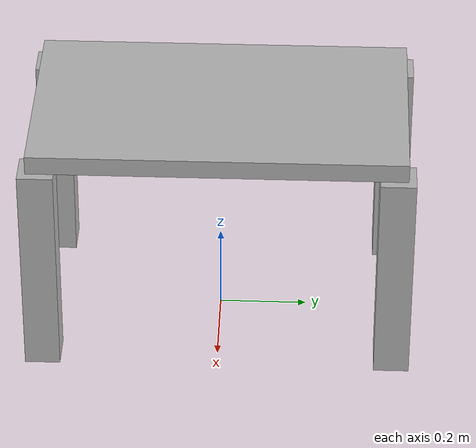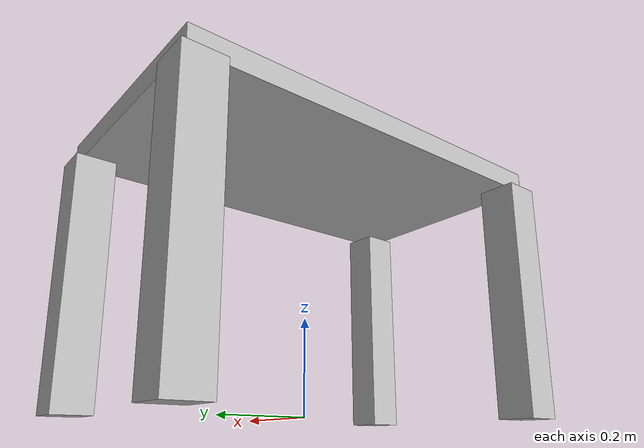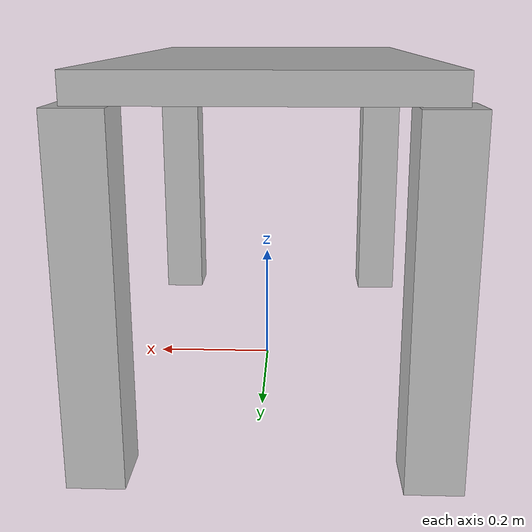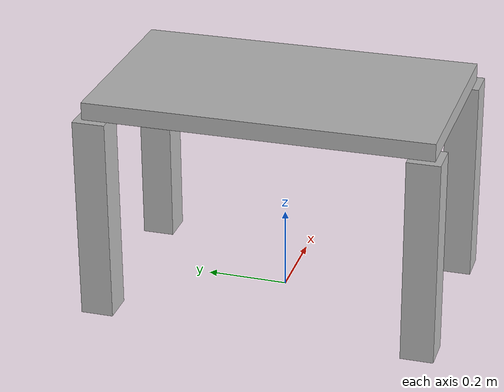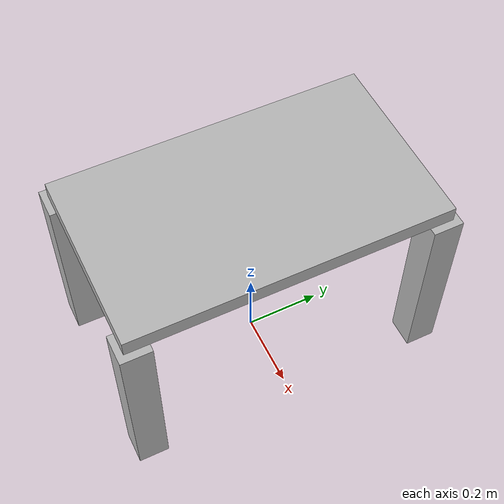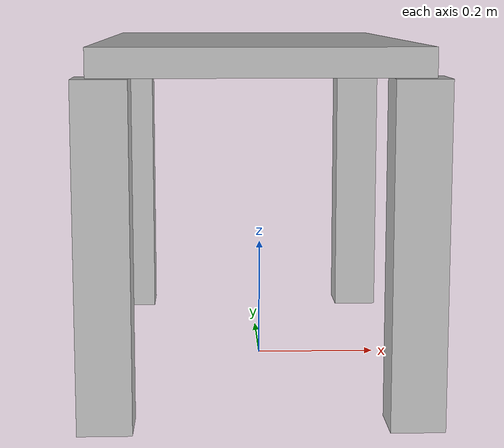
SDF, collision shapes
<?xml version="1.0" ?>
<sdf version="1.5">
  <model name="desk">
    <link name="link">
      <pose>0 0 0 0 0 0</pose>

      <visual name="visual">
        <geometry>
          <mesh><uri>model://desk/meshes/desk.obj</uri></mesh>
        </geometry>
      </visual>

      <!-- 碰撞部分：用简单盒子近似 -->
      <!-- 桌面：扁盒，覆盖桌面区域 -->
      <collision name="tabletop">
        <pose>-0.014 0 0.530 0 0 0</pose>
        <geometry>
          <box>
            <size>0.491 0.844 0.043</size>
          </box>
        </geometry>
      </collision>

      <!-- 四条桌腿（延伸至桌面底部） -->
      <collision name="leg_front_left">
        <pose>-0.239 0.399 0.254 0 0 0</pose>   <!-- 中心高度 = 0.508/2 -->
        <geometry>
          <box>
            <size>0.08 0.08 0.508</size>        <!-- 稍粗一点，确保覆盖腿实际位置 -->
          </box>
        </geometry>
      </collision>

      <collision name="leg_front_right">
        <pose>0.211 0.399 0.254 0 0 0</pose>
        <geometry>
          <box>
            <size>0.08 0.08 0.508</size>
          </box>
        </geometry>
      </collision>

      <collision name="leg_back_left">
        <pose>-0.239 -0.399 0.254 0 0 0</pose>
        <geometry>
          <box>
            <size>0.08 0.08 0.508</size>
          </box>
        </geometry>
      </collision>

      <collision name="leg_back_right">
        <pose>0.211 -0.399 0.254 0 0 0</pose>
        <geometry>
          <box>
            <size>0.08 0.08 0.508</size>
          </box>
        </geometry>
      </collision>

    </link>
  </model>
</sdf>
